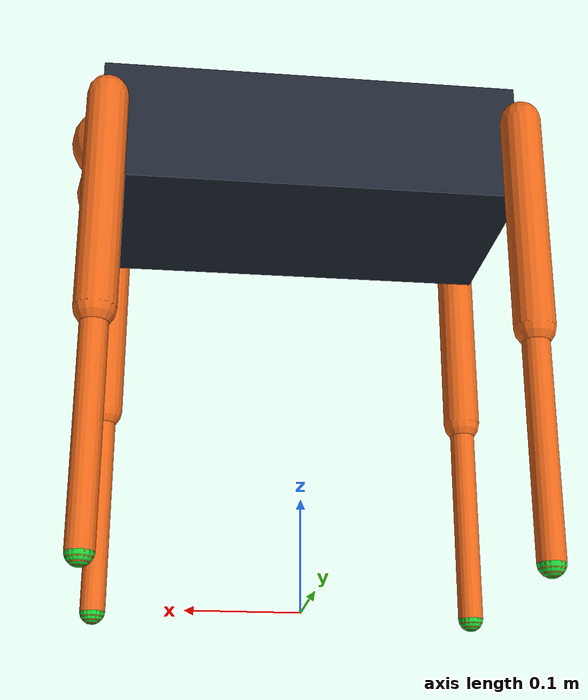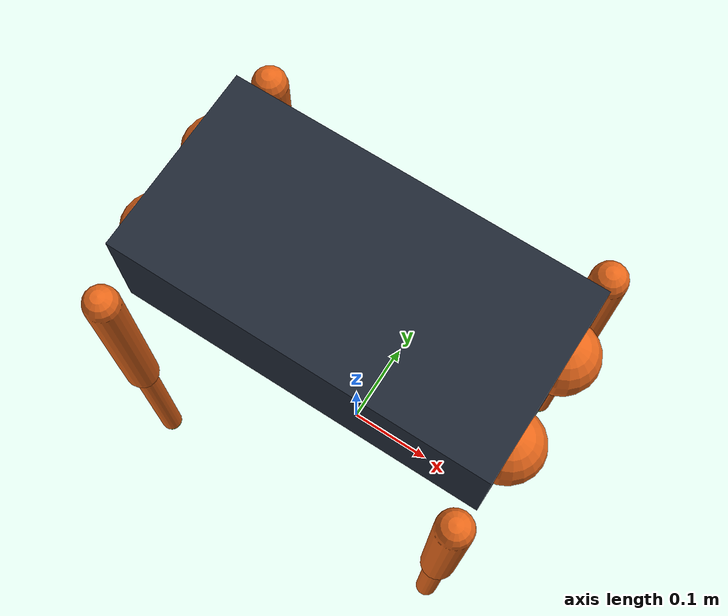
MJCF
<mujoco model="a1_retarget">
  <compiler angle="radian" autolimits="true"/>
  <option timestep="0.02" gravity="0 0 -9.81"/>

  <default>
    <joint damping="0" armature="0"/>
    <geom contype="0" conaffinity="0" density="100"/>
    <site size="0.012" rgba="0.1 0.8 0.2 1"/>
  </default>

  <worldbody>
    <body name="base" pos="0 0 0.42">
      <freejoint name="root"/>
      <geom name="base_visual" type="box" size="0.19 0.097 0.057" rgba="0.12 0.15 0.20 1"/>
      <site name="base_site" pos="0 0 0"/>

      <body name="FR_hip" pos="0.183 -0.047 0">
        <joint name="FR_hip_joint" type="hinge" axis="1 0 0" range="-0.802851455917 0.802851455917"/>
        <geom type="sphere" size="0.035" rgba="0.9 0.4 0.1 1"/>
        <site name="FR_hip_site" pos="0 0 0"/>
        <body name="FR_thigh" pos="0 -0.08505 0">
          <joint name="FR_thigh_joint" type="hinge" axis="0 1 0" range="-1.0471975512 4.18879020479"/>
          <geom type="capsule" fromto="0 0 0 0 0 -0.2" size="0.018" rgba="0.9 0.4 0.1 1"/>
          <site name="FR_thigh_site" pos="0 0 0"/>
          <body name="FR_calf" pos="0 0 -0.2">
            <joint name="FR_calf_joint" type="hinge" axis="0 1 0" range="-2.69653369433 -0.916297857297"/>
            <geom type="capsule" fromto="0 0 0 0 0 -0.2" size="0.012" rgba="0.9 0.4 0.1 1"/>
            <site name="FR_calf_site" pos="0 0 0"/>
            <site name="FR_foot_site" pos="0 0 -0.2"/>
          </body>
        </body>
      </body>

      <body name="FL_hip" pos="0.183 0.047 0">
        <joint name="FL_hip_joint" type="hinge" axis="1 0 0" range="-0.802851455917 0.802851455917"/>
        <geom type="sphere" size="0.035" rgba="0.9 0.4 0.1 1"/>
        <site name="FL_hip_site" pos="0 0 0"/>
        <body name="FL_thigh" pos="0 0.08505 0">
          <joint name="FL_thigh_joint" type="hinge" axis="0 1 0" range="-1.0471975512 4.18879020479"/>
          <geom type="capsule" fromto="0 0 0 0 0 -0.2" size="0.018" rgba="0.9 0.4 0.1 1"/>
          <site name="FL_thigh_site" pos="0 0 0"/>
          <body name="FL_calf" pos="0 0 -0.2">
            <joint name="FL_calf_joint" type="hinge" axis="0 1 0" range="-2.69653369433 -0.916297857297"/>
            <geom type="capsule" fromto="0 0 0 0 0 -0.2" size="0.012" rgba="0.9 0.4 0.1 1"/>
            <site name="FL_calf_site" pos="0 0 0"/>
            <site name="FL_foot_site" pos="0 0 -0.2"/>
          </body>
        </body>
      </body>

      <body name="RR_hip" pos="-0.183 -0.047 0">
        <joint name="RR_hip_joint" type="hinge" axis="1 0 0" range="-0.802851455917 0.802851455917"/>
        <geom type="sphere" size="0.035" rgba="0.9 0.4 0.1 1"/>
        <site name="RR_hip_site" pos="0 0 0"/>
        <body name="RR_thigh" pos="0 -0.08505 0">
          <joint name="RR_thigh_joint" type="hinge" axis="0 1 0" range="-1.0471975512 4.18879020479"/>
          <geom type="capsule" fromto="0 0 0 0 0 -0.2" size="0.018" rgba="0.9 0.4 0.1 1"/>
          <site name="RR_thigh_site" pos="0 0 0"/>
          <body name="RR_calf" pos="0 0 -0.2">
            <joint name="RR_calf_joint" type="hinge" axis="0 1 0" range="-2.69653369433 -0.916297857297"/>
            <geom type="capsule" fromto="0 0 0 0 0 -0.2" size="0.012" rgba="0.9 0.4 0.1 1"/>
            <site name="RR_calf_site" pos="0 0 0"/>
            <site name="RR_foot_site" pos="0 0 -0.2"/>
          </body>
        </body>
      </body>

      <body name="RL_hip" pos="-0.183 0.047 0">
        <joint name="RL_hip_joint" type="hinge" axis="1 0 0" range="-0.802851455917 0.802851455917"/>
        <geom type="sphere" size="0.035" rgba="0.9 0.4 0.1 1"/>
        <site name="RL_hip_site" pos="0 0 0"/>
        <body name="RL_thigh" pos="0 0.08505 0">
          <joint name="RL_thigh_joint" type="hinge" axis="0 1 0" range="-1.0471975512 4.18879020479"/>
          <geom type="capsule" fromto="0 0 0 0 0 -0.2" size="0.018" rgba="0.9 0.4 0.1 1"/>
          <site name="RL_thigh_site" pos="0 0 0"/>
          <body name="RL_calf" pos="0 0 -0.2">
            <joint name="RL_calf_joint" type="hinge" axis="0 1 0" range="-2.69653369433 -0.916297857297"/>
            <geom type="capsule" fromto="0 0 0 0 0 -0.2" size="0.012" rgba="0.9 0.4 0.1 1"/>
            <site name="RL_calf_site" pos="0 0 0"/>
            <site name="RL_foot_site" pos="0 0 -0.2"/>
          </body>
        </body>
      </body>
    </body>
  </worldbody>
</mujoco>
